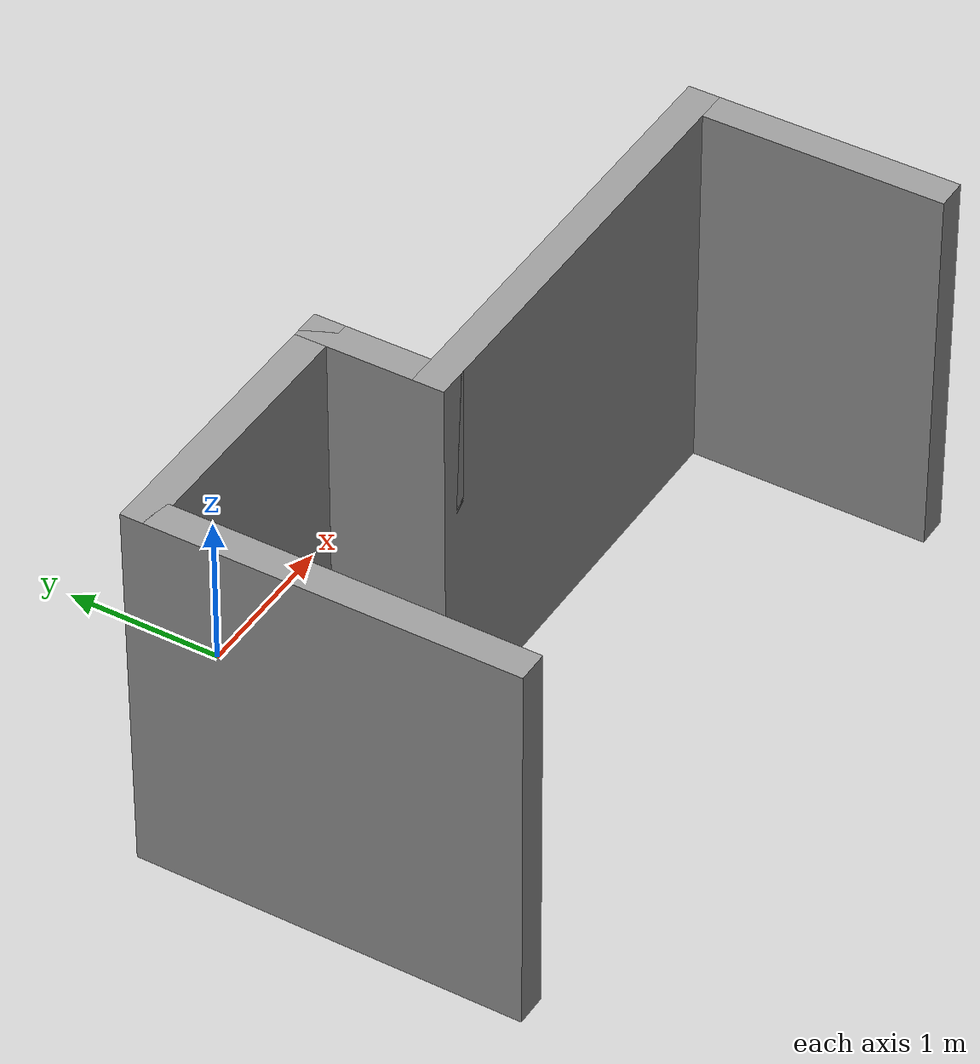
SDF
<?xml version='1.0'?>
<sdf version='1.4'>
  <model name='trial_walls'>
    <link name='Wall_3'>
      <collision name='Wall_3_Collision'>
        <geometry>
          <box>
            <size>2.45 0.2 2.5</size>
          </box>
        </geometry>
        <pose>0 0 1.25 0 -0 0</pose>
      </collision>
      <visual name='Wall_3_Visual'>
        <pose>0 0 1.25 0 -0 0</pose>
        <geometry>
          <box>
            <size>2.45 0.2 2.5</size>
          </box>
        </geometry>
        <material>
          <script>
            <uri>file://media/materials/scripts/gazebo.material</uri>
            <name>Gazebo/Grey</name>
          </script>
        </material>
      </visual>
      <velocity_decay>
        <linear>0</linear>
        <angular>0</angular>
      </velocity_decay>
      <pose>-1.48347 -1.71742 0 0 -0 1.5708</pose>
    </link>
    <link name='Wall_4'>
      <collision name='Wall_4_Collision'>
        <geometry>
          <box>
            <size>1.91 0.2 2.5</size>
          </box>
        </geometry>
        <pose>0 0 1.25 0 -0 0</pose>
      </collision>
      <visual name='Wall_4_Visual'>
        <pose>0 0 1.25 0 -0 0</pose>
        <geometry>
          <box>
            <size>1.91 0.2 2.5</size>
          </box>
        </geometry>
        <material>
          <script>
            <uri>file://media/materials/scripts/gazebo.material</uri>
            <name>Gazebo/Grey</name>
          </script>
        </material>
      </visual>
      <velocity_decay>
        <linear>0</linear>
        <angular>0</angular>
      </velocity_decay>
      <pose>-0.628471 -0.59242 0 0 -0 0</pose>
    </link>
    <link name='Wall_5'>
      <collision name='Wall_5_Collision'>
        <geometry>
          <box>
            <size>0.94 0.2 2.5</size>
          </box>
        </geometry>
        <pose>0 0 1.25 0 -0 0</pose>
      </collision>
      <visual name='Wall_5_Visual'>
        <pose>0 0 1.25 0 -0 0</pose>
        <geometry>
          <box>
            <size>0.94 0.2 2.5</size>
          </box>
        </geometry>
        <material>
          <script>
            <uri>file://media/materials/scripts/gazebo.material</uri>
            <name>Gazebo/Grey</name>
          </script>
        </material>
      </visual>
      <velocity_decay>
        <linear>0</linear>
        <angular>0</angular>
      </velocity_decay>
      <pose>0.226529 -0.96242 0 0 0 -1.5708</pose>
    </link>
    <link name='Wall_6'>
      <collision name='Wall_6_Collision'>
        <geometry>
          <box>
            <size>2.99 0.2 2.5</size>
          </box>
        </geometry>
        <pose>0 0 1.25 0 -0 0</pose>
      </collision>
      <visual name='Wall_6_Visual'>
        <pose>0 0 1.25 0 -0 0</pose>
        <geometry>
          <box>
            <size>2.99 0.2 2.5</size>
          </box>
        </geometry>
        <material>
          <script>
            <uri>file://media/materials/scripts/gazebo.material</uri>
            <name>Gazebo/Grey</name>
          </script>
        </material>
      </visual>
      <velocity_decay>
        <linear>0</linear>
        <angular>0</angular>
      </velocity_decay>
      <pose>1.62153 -1.33242 0 0 -0 0</pose>
    </link>
    <link name='Wall_7'>
      <collision name='Wall_7_Collision'>
        <geometry>
          <box>
            <size>1.73 0.2 2.5</size>
          </box>
        </geometry>
        <pose>0 0 1.25 0 -0 0</pose>
      </collision>
      <visual name='Wall_7_Visual'>
        <pose>0 0 1.25 0 -0 0</pose>
        <geometry>
          <box>
            <size>1.73 0.2 2.5</size>
          </box>
        </geometry>
        <material>
          <script>
            <uri>file://media/materials/scripts/gazebo.material</uri>
            <name>Gazebo/Grey</name>
          </script>
        </material>
      </visual>
      <velocity_decay>
        <linear>0</linear>
        <angular>0</angular>
      </velocity_decay>
      <pose>3.01653 -2.09742 0 0 0 -1.5708</pose>
    </link>
    <static>1</static>
  </model>
</sdf>
